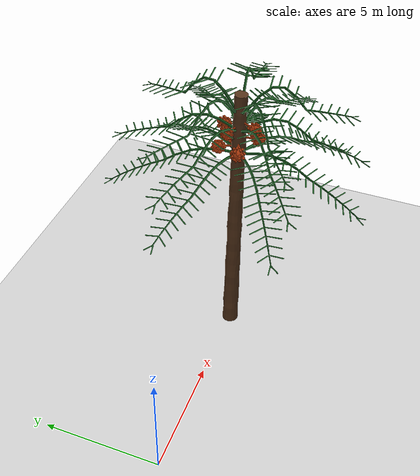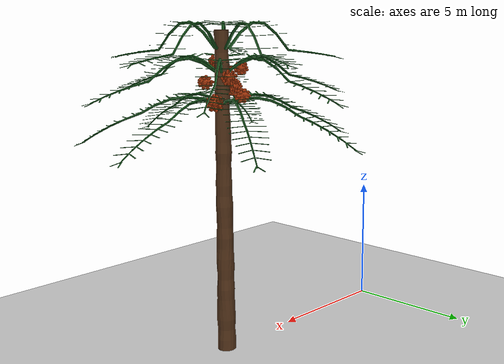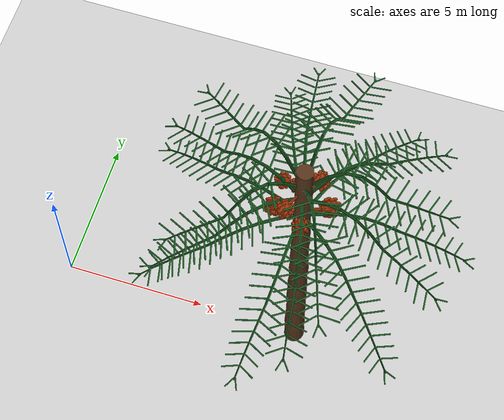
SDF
<sdf version="1.6">
 <world name="harvester_tree">
  <include><uri>model://sun</uri></include>
  <include><uri>model://ground_plane</uri></include>
  <include><uri>model://oil_palm_tree</uri><name>oil_palm_tree</name><pose>8.5 0 0 0 0 0</pose></include>
 </world>
</sdf>

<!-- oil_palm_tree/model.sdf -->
<sdf version="1.7">
  <model name="oil_palm_tree_lowpoly">
    <static>true</static>
    <link name="tree">
      <collision name="trunk_collision"><geometry><mesh><uri>model://oil_palm_tree/meshes/trunk_lowpoly.stl</uri></mesh></geometry></collision>
      <visual name="trunk_visual"><geometry><mesh><uri>model://oil_palm_tree/meshes/trunk_lowpoly.stl</uri></mesh></geometry><material><ambient>0.33 0.20 0.10 1</ambient><diffuse>0.33 0.20 0.10 1</diffuse></material></visual>
      <collision name="branch_01_collision"><pose>0.2686 0.0378 9.4500 0 0 0.139626</pose><geometry><mesh><uri>model://oil_palm_tree/meshes/frond_lower.stl</uri></mesh></geometry></collision>
      <visual name="branch_01_visual"><pose>0.2686 0.0378 9.4500 0 0 0.139626</pose><geometry><mesh><uri>model://oil_palm_tree/meshes/frond_lower.stl</uri></mesh></geometry><material><ambient>0.10 0.34 0.12 1</ambient><diffuse>0.10 0.34 0.12 1</diffuse></material></visual>
      <collision name="branch_02_collision"><pose>0.1380 0.2335 9.4500 0 0 1.037224</pose><geometry><mesh><uri>model://oil_palm_tree/meshes/frond_lower.stl</uri></mesh></geometry></collision>
      <visual name="branch_02_visual"><pose>0.1380 0.2335 9.4500 0 0 1.037224</pose><geometry><mesh><uri>model://oil_palm_tree/meshes/frond_lower.stl</uri></mesh></geometry><material><ambient>0.10 0.34 0.12 1</ambient><diffuse>0.10 0.34 0.12 1</diffuse></material></visual>
      <collision name="branch_03_collision"><pose>-0.0966 0.2535 9.4500 0 0 1.934822</pose><geometry><mesh><uri>model://oil_palm_tree/meshes/frond_lower.stl</uri></mesh></geometry></collision>
      <visual name="branch_03_visual"><pose>-0.0966 0.2535 9.4500 0 0 1.934822</pose><geometry><mesh><uri>model://oil_palm_tree/meshes/frond_lower.stl</uri></mesh></geometry><material><ambient>0.10 0.34 0.12 1</ambient><diffuse>0.10 0.34 0.12 1</diffuse></material></visual>
      <collision name="branch_04_collision"><pose>-0.2584 0.0825 9.4500 0 0 2.832420</pose><geometry><mesh><uri>model://oil_palm_tree/meshes/frond_lower.stl</uri></mesh></geometry></collision>
      <visual name="branch_04_visual"><pose>-0.2584 0.0825 9.4500 0 0 2.832420</pose><geometry><mesh><uri>model://oil_palm_tree/meshes/frond_lower.stl</uri></mesh></geometry><material><ambient>0.10 0.34 0.12 1</ambient><diffuse>0.10 0.34 0.12 1</diffuse></material></visual>
      <collision name="branch_05_collision"><pose>-0.2256 -0.1506 9.4500 0 0 3.730018</pose><geometry><mesh><uri>model://oil_palm_tree/meshes/frond_lower.stl</uri></mesh></geometry></collision>
      <visual name="branch_05_visual"><pose>-0.2256 -0.1506 9.4500 0 0 3.730018</pose><geometry><mesh><uri>model://oil_palm_tree/meshes/frond_lower.stl</uri></mesh></geometry><material><ambient>0.10 0.34 0.12 1</ambient><diffuse>0.10 0.34 0.12 1</diffuse></material></visual>
      <collision name="branch_06_collision"><pose>-0.0230 -0.2703 9.4500 0 0 4.627616</pose><geometry><mesh><uri>model://oil_palm_tree/meshes/frond_lower.stl</uri></mesh></geometry></collision>
      <visual name="branch_06_visual"><pose>-0.0230 -0.2703 9.4500 0 0 4.627616</pose><geometry><mesh><uri>model://oil_palm_tree/meshes/frond_lower.stl</uri></mesh></geometry><material><ambient>0.10 0.34 0.12 1</ambient><diffuse>0.10 0.34 0.12 1</diffuse></material></visual>
      <collision name="branch_07_collision"><pose>0.1970 -0.1865 9.4500 0 0 5.525214</pose><geometry><mesh><uri>model://oil_palm_tree/meshes/frond_lower.stl</uri></mesh></geometry></collision>
      <visual name="branch_07_visual"><pose>0.1970 -0.1865 9.4500 0 0 5.525214</pose><geometry><mesh><uri>model://oil_palm_tree/meshes/frond_lower.stl</uri></mesh></geometry><material><ambient>0.10 0.34 0.12 1</ambient><diffuse>0.10 0.34 0.12 1</diffuse></material></visual>
      <collision name="branch_08_collision"><pose>0.1978 0.1719 10.5500 0 0 0.715585</pose><geometry><mesh><uri>model://oil_palm_tree/meshes/frond_mid.stl</uri></mesh></geometry></collision>
      <visual name="branch_08_visual"><pose>0.1978 0.1719 10.5500 0 0 0.715585</pose><geometry><mesh><uri>model://oil_palm_tree/meshes/frond_mid.stl</uri></mesh></geometry><material><ambient>0.10 0.34 0.12 1</ambient><diffuse>0.10 0.34 0.12 1</diffuse></material></visual>
      <collision name="branch_09_collision"><pose>-0.0500 0.2573 10.5500 0 0 1.762783</pose><geometry><mesh><uri>model://oil_palm_tree/meshes/frond_mid.stl</uri></mesh></geometry></collision>
      <visual name="branch_09_visual"><pose>-0.0500 0.2573 10.5500 0 0 1.762783</pose><geometry><mesh><uri>model://oil_palm_tree/meshes/frond_mid.stl</uri></mesh></geometry><material><ambient>0.10 0.34 0.12 1</ambient><diffuse>0.10 0.34 0.12 1</diffuse></material></visual>
      <collision name="branch_10_collision"><pose>-0.2478 0.0853 10.5500 0 0 2.809980</pose><geometry><mesh><uri>model://oil_palm_tree/meshes/frond_mid.stl</uri></mesh></geometry></collision>
      <visual name="branch_10_visual"><pose>-0.2478 0.0853 10.5500 0 0 2.809980</pose><geometry><mesh><uri>model://oil_palm_tree/meshes/frond_mid.stl</uri></mesh></geometry><material><ambient>0.10 0.34 0.12 1</ambient><diffuse>0.10 0.34 0.12 1</diffuse></material></visual>
      <collision name="branch_11_collision"><pose>-0.1978 -0.1719 10.5500 0 0 3.857178</pose><geometry><mesh><uri>model://oil_palm_tree/meshes/frond_mid.stl</uri></mesh></geometry></collision>
      <visual name="branch_11_visual"><pose>-0.1978 -0.1719 10.5500 0 0 3.857178</pose><geometry><mesh><uri>model://oil_palm_tree/meshes/frond_mid.stl</uri></mesh></geometry><material><ambient>0.10 0.34 0.12 1</ambient><diffuse>0.10 0.34 0.12 1</diffuse></material></visual>
      <collision name="branch_12_collision"><pose>0.0500 -0.2573 10.5500 0 0 4.904375</pose><geometry><mesh><uri>model://oil_palm_tree/meshes/frond_mid.stl</uri></mesh></geometry></collision>
      <visual name="branch_12_visual"><pose>0.0500 -0.2573 10.5500 0 0 4.904375</pose><geometry><mesh><uri>model://oil_palm_tree/meshes/frond_mid.stl</uri></mesh></geometry><material><ambient>0.10 0.34 0.12 1</ambient><diffuse>0.10 0.34 0.12 1</diffuse></material></visual>
      <collision name="branch_13_collision"><pose>0.2478 -0.0853 10.5500 0 0 5.951573</pose><geometry><mesh><uri>model://oil_palm_tree/meshes/frond_mid.stl</uri></mesh></geometry></collision>
      <visual name="branch_13_visual"><pose>0.2478 -0.0853 10.5500 0 0 5.951573</pose><geometry><mesh><uri>model://oil_palm_tree/meshes/frond_mid.stl</uri></mesh></geometry><material><ambient>0.10 0.34 0.12 1</ambient><diffuse>0.10 0.34 0.12 1</diffuse></material></visual>
      <collision name="branch_14_collision"><pose>0.2544 0.0223 11.3500 0 0 0.087266</pose><geometry><mesh><uri>model://oil_palm_tree/meshes/frond_upper.stl</uri></mesh></geometry></collision>
      <visual name="branch_14_visual"><pose>0.2544 0.0223 11.3500 0 0 0.087266</pose><geometry><mesh><uri>model://oil_palm_tree/meshes/frond_upper.stl</uri></mesh></geometry><material><ambient>0.10 0.34 0.12 1</ambient><diffuse>0.10 0.34 0.12 1</diffuse></material></visual>
      <collision name="branch_15_collision"><pose>0.0575 0.2489 11.3500 0 0 1.343904</pose><geometry><mesh><uri>model://oil_palm_tree/meshes/frond_upper.stl</uri></mesh></geometry></collision>
      <visual name="branch_15_visual"><pose>0.0575 0.2489 11.3500 0 0 1.343904</pose><geometry><mesh><uri>model://oil_palm_tree/meshes/frond_upper.stl</uri></mesh></geometry><material><ambient>0.10 0.34 0.12 1</ambient><diffuse>0.10 0.34 0.12 1</diffuse></material></visual>
      <collision name="branch_16_collision"><pose>-0.2189 0.1315 11.3500 0 0 2.600541</pose><geometry><mesh><uri>model://oil_palm_tree/meshes/frond_upper.stl</uri></mesh></geometry></collision>
      <visual name="branch_16_visual"><pose>-0.2189 0.1315 11.3500 0 0 2.600541</pose><geometry><mesh><uri>model://oil_palm_tree/meshes/frond_upper.stl</uri></mesh></geometry><material><ambient>0.10 0.34 0.12 1</ambient><diffuse>0.10 0.34 0.12 1</diffuse></material></visual>
      <collision name="branch_17_collision"><pose>-0.1928 -0.1676 11.3500 0 0 3.857178</pose><geometry><mesh><uri>model://oil_palm_tree/meshes/frond_upper.stl</uri></mesh></geometry></collision>
      <visual name="branch_17_visual"><pose>-0.1928 -0.1676 11.3500 0 0 3.857178</pose><geometry><mesh><uri>model://oil_palm_tree/meshes/frond_upper.stl</uri></mesh></geometry><material><ambient>0.10 0.34 0.12 1</ambient><diffuse>0.10 0.34 0.12 1</diffuse></material></visual>
      <collision name="branch_18_collision"><pose>0.0998 -0.2351 11.3500 0 0 5.113815</pose><geometry><mesh><uri>model://oil_palm_tree/meshes/frond_upper.stl</uri></mesh></geometry></collision>
      <visual name="branch_18_visual"><pose>0.0998 -0.2351 11.3500 0 0 5.113815</pose><geometry><mesh><uri>model://oil_palm_tree/meshes/frond_upper.stl</uri></mesh></geometry><material><ambient>0.10 0.34 0.12 1</ambient><diffuse>0.10 0.34 0.12 1</diffuse></material></visual>
      <collision name="ffb_01_collision"><pose>0.2388 0.1270 9.5500 0 0 0.488692</pose><geometry><mesh><uri>model://oil_palm_tree/meshes/ffb_lowpoly.stl</uri><scale>1.100 1.100 1.100</scale></mesh></geometry></collision>
      <visual name="ffb_01_visual"><pose>0.2388 0.1270 9.5500 0 0 0.488692</pose><geometry><mesh><uri>model://oil_palm_tree/meshes/ffb_lowpoly.stl</uri><scale>1.100 1.100 1.100</scale></mesh></geometry><material><ambient>0.62 0.20 0.035 1</ambient><diffuse>0.62 0.20 0.035 1</diffuse></material></visual>
      <collision name="ffb_02_collision"><pose>-0.1007 0.2492 9.7500 0 0 1.954769</pose><geometry><mesh><uri>model://oil_palm_tree/meshes/ffb_lowpoly.stl</uri><scale>0.950 0.950 0.950</scale></mesh></geometry></collision>
      <visual name="ffb_02_visual"><pose>-0.1007 0.2492 9.7500 0 0 1.954769</pose><geometry><mesh><uri>model://oil_palm_tree/meshes/ffb_lowpoly.stl</uri><scale>0.950 0.950 0.950</scale></mesh></geometry><material><ambient>0.62 0.20 0.035 1</ambient><diffuse>0.62 0.20 0.035 1</diffuse></material></visual>
      <collision name="ffb_03_collision"><pose>-0.2567 -0.0736 9.9500 0 0 3.420845</pose><geometry><mesh><uri>model://oil_palm_tree/meshes/ffb_lowpoly.stl</uri><scale>1.050 1.050 1.050</scale></mesh></geometry></collision>
      <visual name="ffb_03_visual"><pose>-0.2567 -0.0736 9.9500 0 0 3.420845</pose><geometry><mesh><uri>model://oil_palm_tree/meshes/ffb_lowpoly.stl</uri><scale>1.050 1.050 1.050</scale></mesh></geometry><material><ambient>0.62 0.20 0.035 1</ambient><diffuse>0.62 0.20 0.035 1</diffuse></material></visual>
      <collision name="ffb_04_collision"><pose>0.0552 -0.2596 10.1500 0 0 4.921828</pose><geometry><mesh><uri>model://oil_palm_tree/meshes/ffb_lowpoly.stl</uri><scale>0.920 0.920 0.920</scale></mesh></geometry></collision>
      <visual name="ffb_04_visual"><pose>0.0552 -0.2596 10.1500 0 0 4.921828</pose><geometry><mesh><uri>model://oil_palm_tree/meshes/ffb_lowpoly.stl</uri><scale>0.920 0.920 0.920</scale></mesh></geometry><material><ambient>0.62 0.20 0.035 1</ambient><diffuse>0.62 0.20 0.035 1</diffuse></material></visual>
      <collision name="ffb_05_collision"><pose>0.1112 0.2385 10.4200 0 0 1.134464</pose><geometry><mesh><uri>model://oil_palm_tree/meshes/ffb_lowpoly.stl</uri><scale>1.000 1.000 1.000</scale></mesh></geometry></collision>
      <visual name="ffb_05_visual"><pose>0.1112 0.2385 10.4200 0 0 1.134464</pose><geometry><mesh><uri>model://oil_palm_tree/meshes/ffb_lowpoly.stl</uri><scale>1.000 1.000 1.000</scale></mesh></geometry><material><ambient>0.62 0.20 0.035 1</ambient><diffuse>0.62 0.20 0.035 1</diffuse></material></visual>
      <collision name="ffb_06_collision"><pose>-0.2420 0.0978 10.6800 0 0 2.757620</pose><geometry><mesh><uri>model://oil_palm_tree/meshes/ffb_lowpoly.stl</uri><scale>0.880 0.880 0.880</scale></mesh></geometry></collision>
      <visual name="ffb_06_visual"><pose>-0.2420 0.0978 10.6800 0 0 2.757620</pose><geometry><mesh><uri>model://oil_palm_tree/meshes/ffb_lowpoly.stl</uri><scale>0.880 0.880 0.880</scale></mesh></geometry><material><ambient>0.62 0.20 0.035 1</ambient><diffuse>0.62 0.20 0.035 1</diffuse></material></visual>
      <collision name="ffb_07_collision"><pose>-0.1137 -0.2331 10.8800 0 0 4.258603</pose><geometry><mesh><uri>model://oil_palm_tree/meshes/ffb_lowpoly.stl</uri><scale>0.960 0.960 0.960</scale></mesh></geometry></collision>
      <visual name="ffb_07_visual"><pose>-0.1137 -0.2331 10.8800 0 0 4.258603</pose><geometry><mesh><uri>model://oil_palm_tree/meshes/ffb_lowpoly.stl</uri><scale>0.960 0.960 0.960</scale></mesh></geometry><material><ambient>0.62 0.20 0.035 1</ambient><diffuse>0.62 0.20 0.035 1</diffuse></material></visual>
    </link>
  </model>
</sdf>
